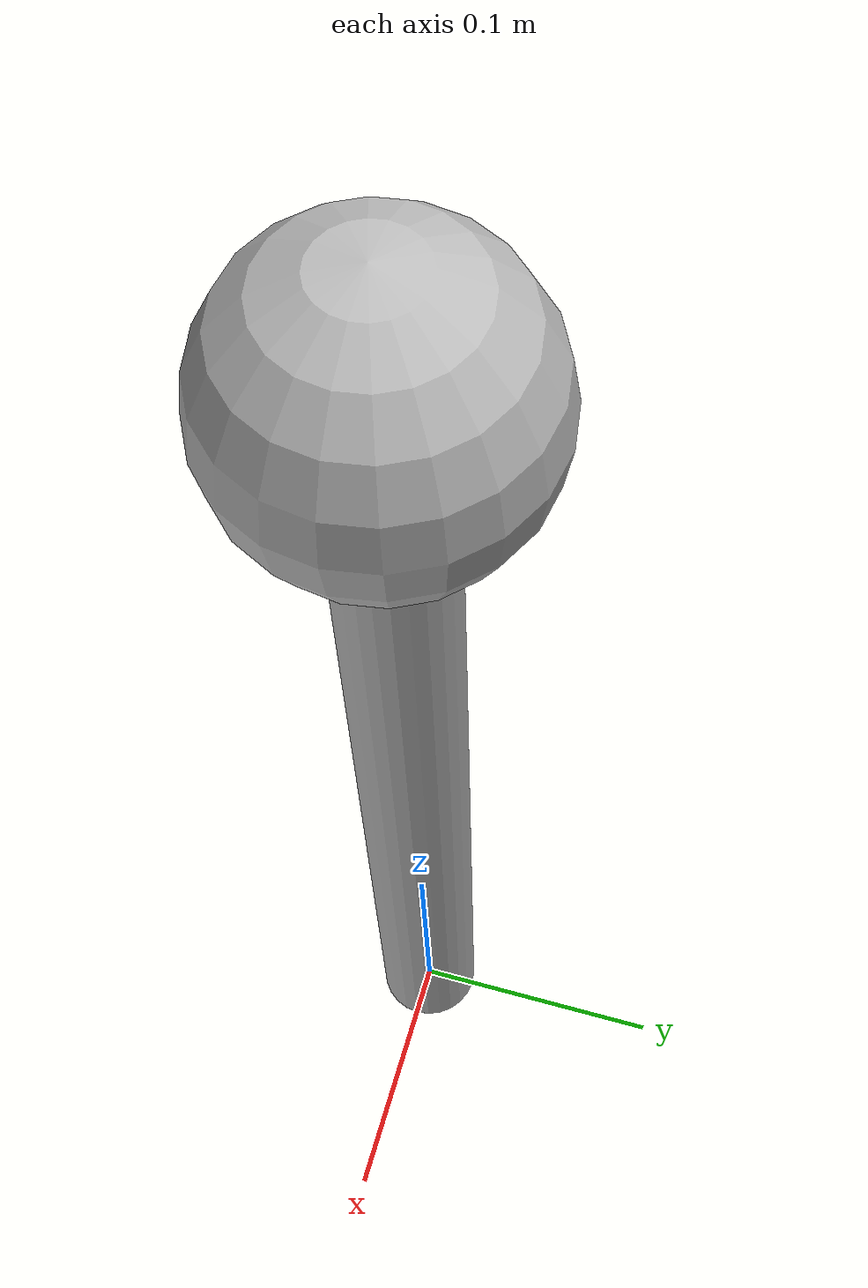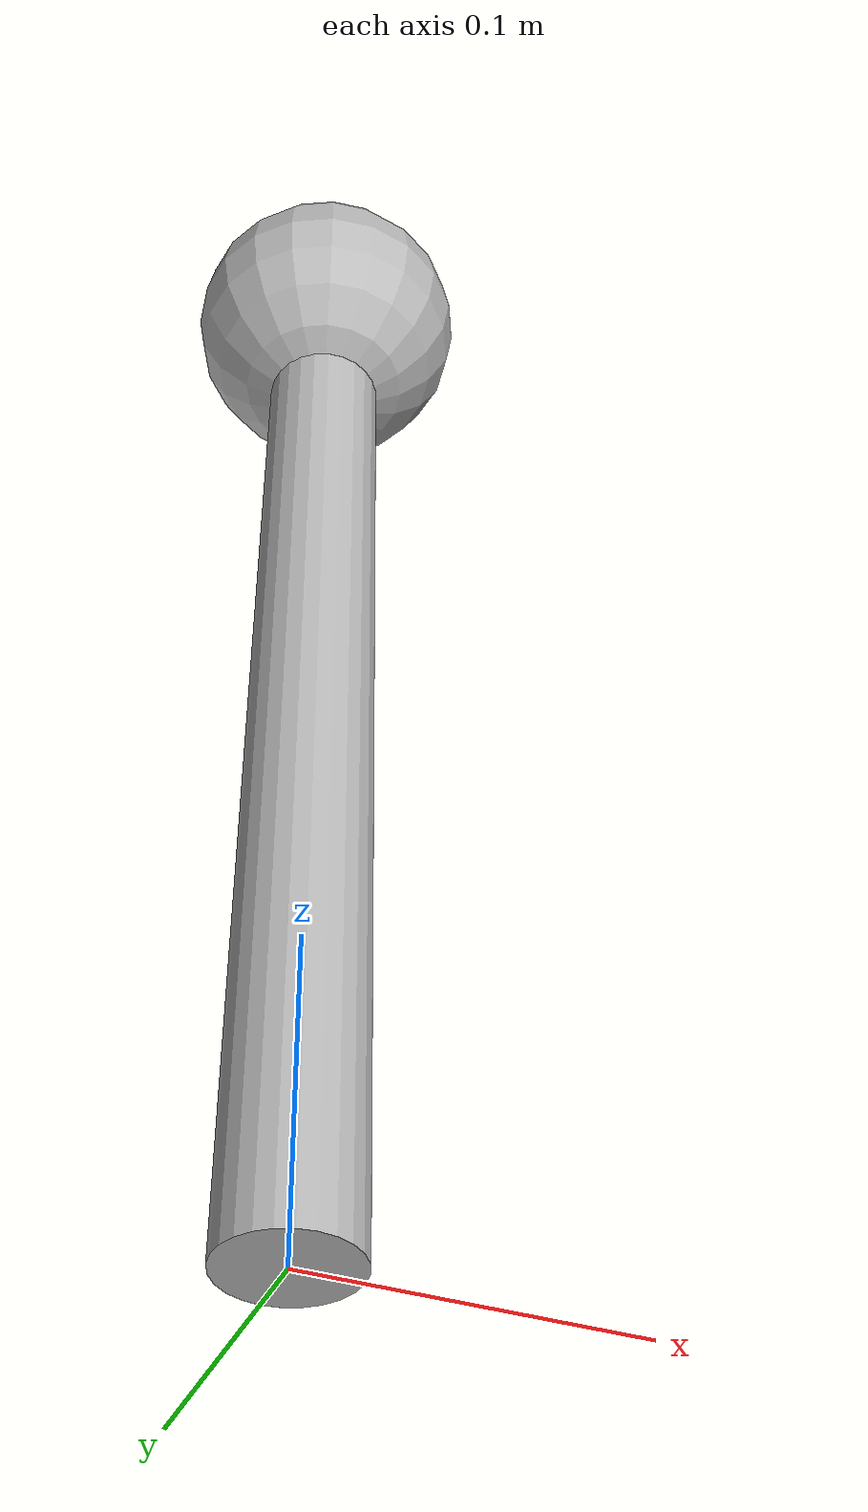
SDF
<?xml version="1.0" ?>
<sdf version="1.6">
  <model name="camera_pole">
    <link name="base_link">
      <inertial>
        <inertia>
          <ixx>0.0083137104</ixx>
          <iyy>0.0387382402</iyy>
          <izz>0.0469845106</izz>
          <ixy>0</ixy>
          <ixz>0</ixz>
          <iyz>0</iyz>
        </inertia>
        <pose frame="">0 0 0 0 0 0</pose>
        <mass>1e-10</mass>
      </inertial>
      <collision name="collision">
        <geometry>
          <cylinder>
            <radius>0.02</radius>
            <length>0.4</length>
          </cylinder>
        </geometry>
        <pose frame="">0 0 0.2 0 0 0</pose>
      </collision>
      <visual name="visual_cylinder">
        <geometry>
          <cylinder>
            <radius>0.02</radius>
            <length>0.4</length>
          </cylinder>
        </geometry>
        <pose frame="">0 0 0.2 0 0 0</pose>
      </visual>
      <visual name="visual_sphere">
        <geometry>
          <sphere>
            <radius>0.05</radius>
          </sphere>
        </geometry>
        <pose frame="">0 0 0.4 0 0 0</pose>
      </visual>
    </link>
    <link name="fwd_cam_link">
      <pose frame="">0 0 0.42 0 -1.5708 0</pose>
      <inertial>
        <inertia>
          <ixx>0.1</ixx>
          <iyy>0.1</iyy>
          <izz>0.1</izz>
          <ixy>0</ixy>
          <ixz>0</ixz>
          <iyz>0</iyz>
        </inertia>
        <pose frame="">0 0 0 0 0 0</pose>
        <mass>1e-10</mass>
      </inertial>
      <sensor name="fwd_cam" type="camera">
        <camera name="fwd_cam">
          <horizontal_fov>2.0943951</horizontal_fov>
          <image>
            <height>720.0</height>
            <width>1280.0</width>
          </image>
          <clip>
            <far>1000.0</far>
            <near>0.1</near>
          </clip>
        </camera>
        <always_on>1</always_on>
        <update_rate>30.0</update_rate>
        <visualize>1</visualize>
        <plugin name="camera_controller" filename="libgazebo_ros_camera.so">
          <always_on>1</always_on>
          <update_rate>30</update_rate>
          <cameraName>fwd_cam</cameraName>
          <imageTopicName>raw</imageTopicName>
          <cameraInfoTopicName>info</cameraInfoTopicName>
          <frameName>fwd_cam_link</frameName>
        </plugin>
      </sensor>
    </link>
    <link name="cam_zero_link">
      <pose frame="">0.02 0 0.4 0 0 0</pose>
      <inertial>
        <inertia>
          <ixx>0.1</ixx>
          <iyy>0.1</iyy>
          <izz>0.1</izz>
          <ixy>0</ixy>
          <ixz>0</ixz>
          <iyz>0</iyz>
        </inertia>
        <pose frame="">0 0 0 0 0 0</pose>
        <mass>1e-10</mass>
      </inertial>
      <sensor name="cam_zero" type="camera">
        <camera name="cam_zero">
          <horizontal_fov>2.0943951023931953</horizontal_fov>
          <image>
            <height>720.0</height>
            <width>1280.0</width>
          </image>
          <clip>
            <far>1000.0</far>
            <near>0.1</near>
          </clip>
        </camera>
        <always_on>1</always_on>
        <update_rate>30.0</update_rate>
        <visualize>1</visualize>
        <plugin name="camera_controller" filename="libgazebo_ros_camera.so">
          <always_on>1</always_on>
          <update_rate>30</update_rate>
          <cameraName>cam_zero</cameraName>
          <imageTopicName>raw</imageTopicName>
          <cameraInfoTopicName>info</cameraInfoTopicName>
          <frameName>cam_zero_link</frameName>
        </plugin>
      </sensor>
    </link>
    <link name="cam_one_link">
      <pose frame="">1.22465e-18 0.02 0.4 0 0 1.5708</pose>
      <inertial>
        <inertia>
          <ixx>0.1</ixx>
          <iyy>0.1</iyy>
          <izz>0.1</izz>
          <ixy>0</ixy>
          <ixz>0</ixz>
          <iyz>0</iyz>
        </inertia>
        <pose frame="">0 0 0 0 0 0</pose>
        <mass>1e-10</mass>
      </inertial>
      <sensor name="cam_one" type="camera">
        <camera name="cam_one">
          <horizontal_fov>2.0943951023931953</horizontal_fov>
          <image>
            <height>720.0</height>
            <width>1280.0</width>
          </image>
          <clip>
            <far>1000.0</far>
            <near>0.1</near>
          </clip>
        </camera>
        <always_on>1</always_on>
        <update_rate>30.0</update_rate>
        <visualize>1</visualize>
        <plugin name="camera_controller" filename="libgazebo_ros_camera.so">
          <always_on>1</always_on>
          <update_rate>30</update_rate>
          <cameraName>cam_one</cameraName>
          <imageTopicName>raw</imageTopicName>
          <cameraInfoTopicName>info</cameraInfoTopicName>
          <frameName>cam_one_link</frameName>
        </plugin>
      </sensor>
    </link>
    <link name="cam_two_link">
      <pose frame="">-0.02 2.44929e-18 0.4 0 0 3.14159</pose>
      <inertial>
        <inertia>
          <ixx>0.1</ixx>
          <iyy>0.1</iyy>
          <izz>0.1</izz>
          <ixy>0</ixy>
          <ixz>0</ixz>
          <iyz>0</iyz>
        </inertia>
        <pose frame="">0 0 0 0 0 0</pose>
        <mass>1e-10</mass>
      </inertial>
      <sensor name="cam_two" type="camera">
        <camera name="cam_two">
          <horizontal_fov>2.0943951023931953</horizontal_fov>
          <image>
            <height>720.0</height>
            <width>1280.0</width>
          </image>
          <clip>
            <far>1000.0</far>
            <near>0.1</near>
          </clip>
        </camera>
        <always_on>1</always_on>
        <update_rate>30.0</update_rate>
        <visualize>1</visualize>
        <plugin name="camera_controller" filename="libgazebo_ros_camera.so">
          <always_on>1</always_on>
          <update_rate>30</update_rate>
          <cameraName>cam_two</cameraName>
          <imageTopicName>raw</imageTopicName>
          <cameraInfoTopicName>info</cameraInfoTopicName>
          <frameName>cam_two_link</frameName>
        </plugin>
      </sensor>
    </link>
    <link name="cam_three_link">
      <pose frame="">-3.67394e-18 -0.02 0.4 0 0 4.71239</pose>
      <inertial>
        <inertia>
          <ixx>0.1</ixx>
          <iyy>0.1</iyy>
          <izz>0.1</izz>
          <ixy>0</ixy>
          <ixz>0</ixz>
          <iyz>0</iyz>
        </inertia>
        <pose frame="">0 0 0 0 0 0</pose>
        <mass>1e-10</mass>
      </inertial>
      <sensor name="cam_three" type="camera">
        <camera name="cam_three">
          <horizontal_fov>2.0943951023931953</horizontal_fov>
          <image>
            <height>720.0</height>
            <width>1280.0</width>
          </image>
          <clip>
            <far>1000.0</far>
            <near>0.1</near>
          </clip>
        </camera>
        <always_on>1</always_on>
        <update_rate>30.0</update_rate>
        <visualize>1</visualize>
        <plugin name="camera_controller" filename="libgazebo_ros_camera.so">
          <always_on>1</always_on>
          <update_rate>30</update_rate>
          <cameraName>cam_three</cameraName>
          <imageTopicName>raw</imageTopicName>
          <cameraInfoTopicName>info</cameraInfoTopicName>
          <frameName>cam_three_link</frameName>
        </plugin>
      </sensor>
    </link>
    <joint name="fwd_cam_joint" type="fixed">
      <parent>base_link</parent>
      <child>fwd_cam_link</child>
    </joint>
    <joint name="cam_zero_joint" type="fixed">
      <parent>base_link</parent>
      <child>cam_zero_link</child>
    </joint>
    <joint name="cam_one_joint" type="fixed">
      <parent>base_link</parent>
      <child>cam_one_link</child>
    </joint>
    <joint name="cam_two_joint" type="fixed">
      <parent>base_link</parent>
      <child>cam_two_link</child>
    </joint>
    <joint name="cam_three_joint" type="fixed">
      <parent>base_link</parent>
      <child>cam_three_link</child>
    </joint>
  </model>
</sdf>
